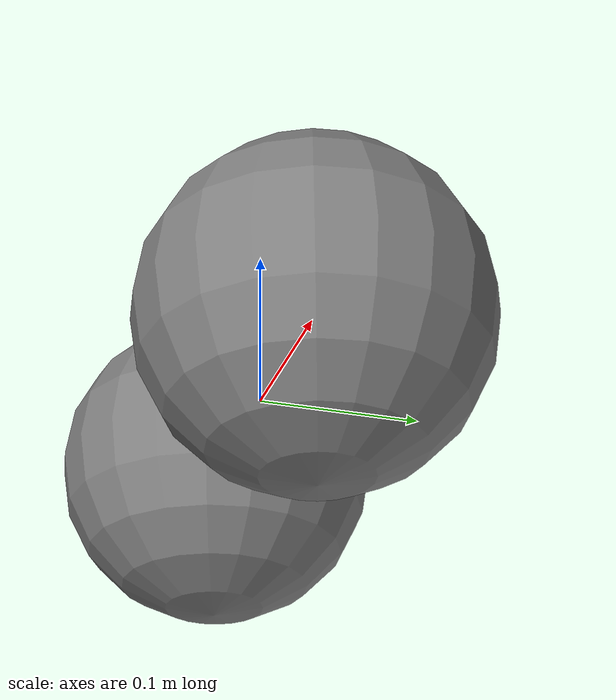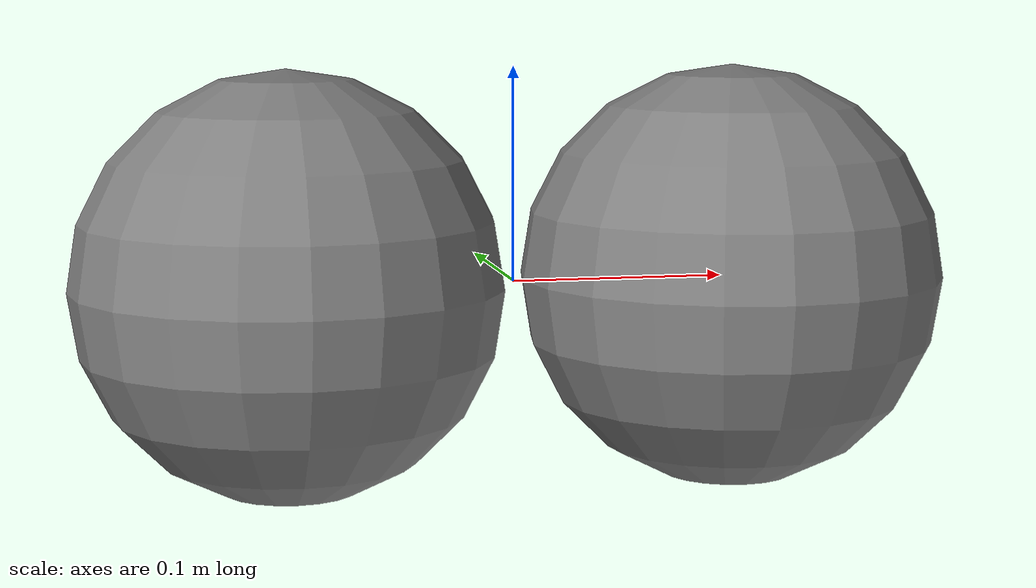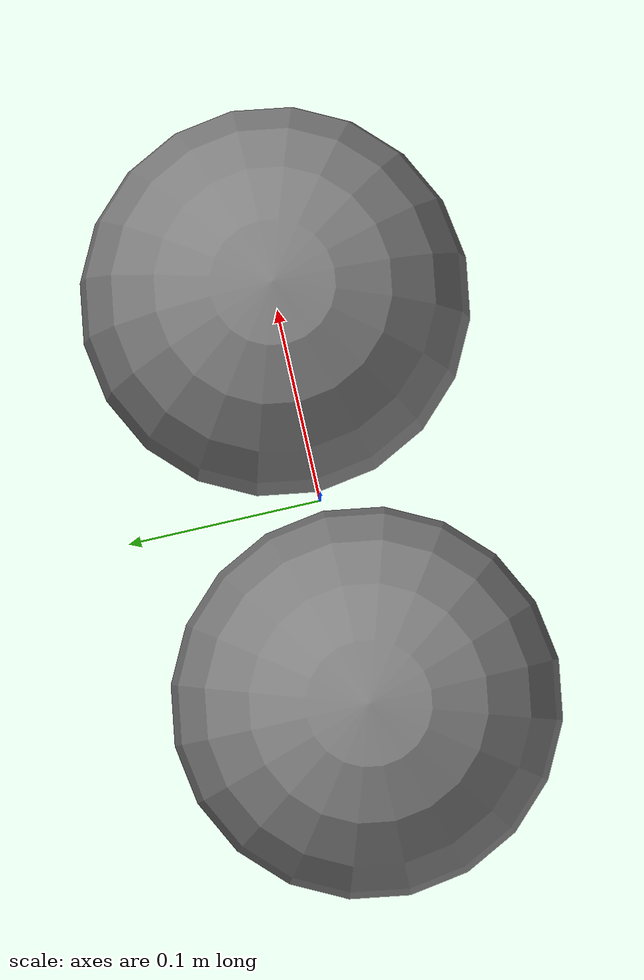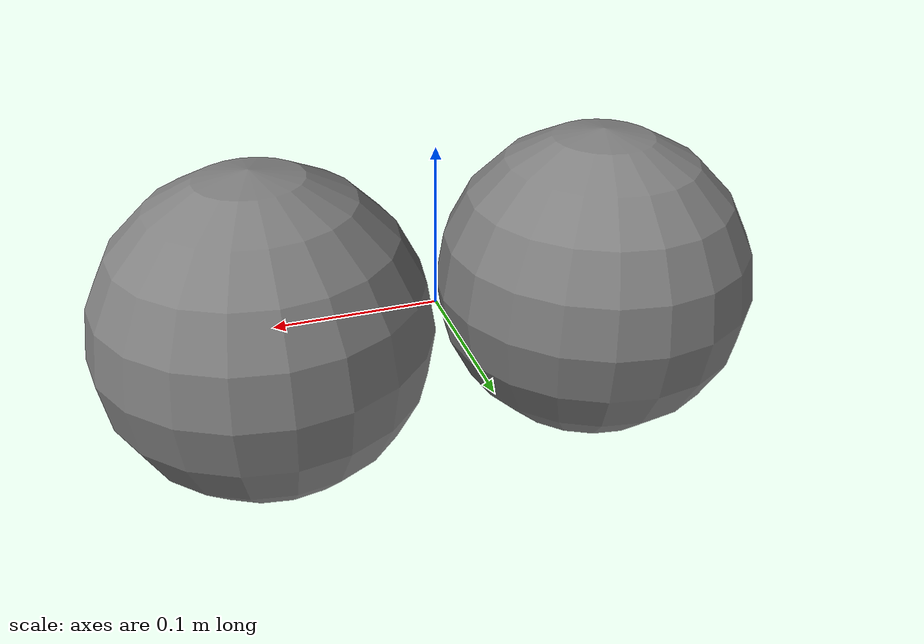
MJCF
<mujoco model="override_zero_margin">
        <option gravity="0 0 0" timestep="0.002"/>
        <worldbody>
            <body name="a" pos="-0.105 0 0">
                <freejoint name="a_free"/>
                <geom type="sphere" size="0.1" mass="1.0" margin="0.05"/>
            </body>
            <body name="b" pos="0.105 0 0">
                <freejoint name="b_free"/>
                <geom type="sphere" size="0.1" mass="1.0" margin="0.05"/>
            </body>
        </worldbody>
    </mujoco>
